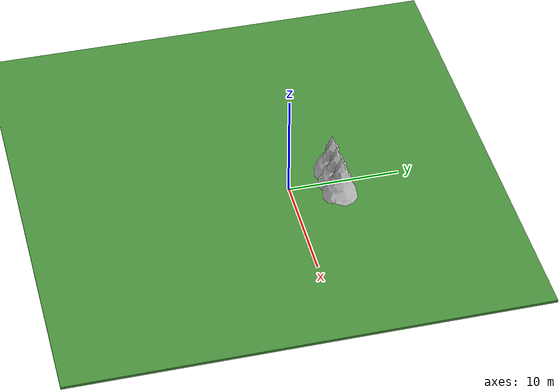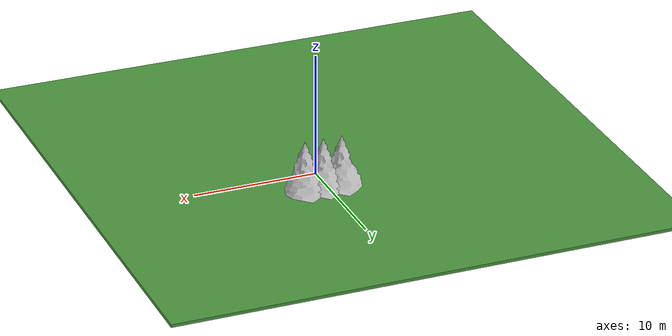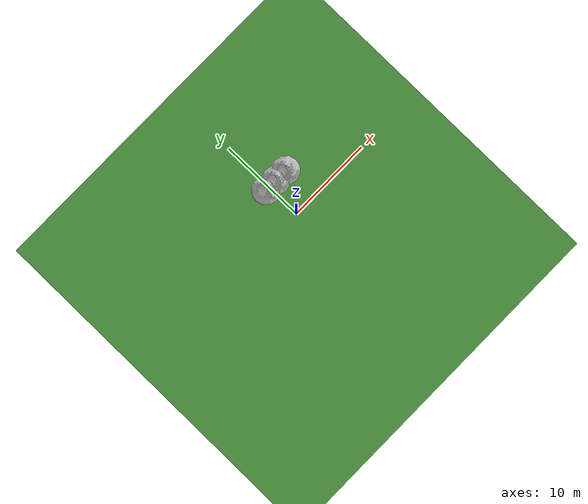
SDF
<sdf version="1.6">
 <world name="default">
  <light type="directional" name="sun">
   <pose>0.0 0.0 1000 -0.35 -0.5 0</pose>
   <diffuse>0.8 0.8 0.8 1</diffuse>
   <specular>0.2 0.2 0.2 1</specular>
   <attenuation>
    <range>1000</range>
    <constant>0.9</constant>
    <linear>0.01</linear>
    <quadratic>0.001</quadratic>
   </attenuation>
   <direction>-0.5 0.1 -0.9</direction>
  </light>
  <gravity>0 0 -9.8</gravity>
  <magnetic_field>6e-06 2.3e-05 -4.2e-05</magnetic_field>
  <atmosphere type="adiabatic"/>
  <physics name="default_physics" default="0" type="ode">
   <dart><collision_detector>bullet</collision_detector></dart>
   <max_step_size>0.005</max_step_size>
   <real_time_factor>1</real_time_factor>
   <real_time_update_rate>200</real_time_update_rate>
  </physics>
  <scene>
   <ambient>0.9 0.9 0.9 1</ambient>
   <sky><clouds><speed>8</speed></clouds></sky>
   <grid>false</grid>
   <background>0.7 0.7 0.7 1</background>
   <shadows>1</shadows>
  </scene>
  <spherical_coordinates>
   <surface_model>EARTH_WGS84</surface_model>
   <latitude_deg>0</latitude_deg>
   <longitude_deg>0</longitude_deg>
   <elevation>0</elevation>
   <heading_deg>0</heading_deg>
  </spherical_coordinates>
  <include>
   <uri>model://pine_tree</uri>
   <pose>-0.5 4 0 0 0 0</pose>
   <name>pine_tree_00</name>
   <static>true</static>
  </include>
  <include>
   <uri>model://pine_tree</uri>
   <pose>1.0 4 0 0 0 0</pose>
   <name>pine_tree_01</name>
   <static>true</static>
  </include>
  <include>
   <uri>model://pine_tree</uri>
   <pose>2.5 4 0 0 0 0</pose>
   <name>pine_tree_02</name>
   <static>true</static>
  </include>
  <include>
   <uri>model://my_ground_plane</uri>
   <pose>0 0 0.03 0 0 0</pose>
   <name>ground_00</name>
   <static>true</static>
  </include>
  <include>
   <uri>model://my_ground_plane</uri>
   <pose>-5 0 0.03 0 0 0</pose>
   <name>ground_01</name>
   <static>true</static>
  </include>
  <include>
   <uri>model://my_ground_plane</uri>
   <pose>0 -5 0.03 0 0 0</pose>
   <name>ground_02</name>
   <static>true</static>
  </include>
  <include>
   <uri>model://my_ground_plane</uri>
   <pose>5 0 0.03 0 0 0</pose>
   <name>ground_03</name>
   <static>true</static>
  </include>
  <include>
   <uri>model://my_ground_plane</uri>
   <pose>0 5 0.03 0 0 0</pose>
   <name>ground_04</name>
   <static>true</static>
  </include>
  <include>
   <uri>model://my_ground_plane</uri>
   <pose>-5 -5 0.03 0 0 0</pose>
   <name>ground_05</name>
   <static>true</static>
  </include>
  <include>
   <uri>model://my_ground_plane</uri>
   <pose>5 -5 0.03 0 0 0</pose>
   <name>ground_06</name>
   <static>true</static>
  </include>
  <include>
   <uri>model://my_ground_plane</uri>
   <pose>-10 0 0.03 0 0 0</pose>
   <name>ground_07</name>
   <static>true</static>
  </include>
  <include>
   <uri>model://my_ground_plane</uri>
   <pose>5 5 0.03 0 0 0</pose>
   <name>ground_08</name>
   <static>true</static>
  </include>
  <include>
   <uri>model://my_ground_plane</uri>
   <pose>-10 5 0.03 0 0 0</pose>
   <name>ground_09</name>
   <static>true</static>
  </include>
  <include>
   <uri>model://my_ground_plane</uri>
   <pose>-5 5 0.03 0 0 0</pose>
   <name>ground_10</name>
   <static>true</static>
  </include>
  <include>
   <uri>model://my_ground_plane</uri>
   <pose>-10 -10 0.03 0 0 0</pose>
   <name>ground_11</name>
   <static>true</static>
  </include>
  <include>
   <uri>model://my_ground_plane</uri>
   <pose>-5 -10 0.03 0 0 0</pose>
   <name>ground_12</name>
   <static>true</static>
  </include>
  <include>
   <uri>model://my_ground_plane</uri>
   <pose>0 -10 0.03 0 0 0</pose>
   <name>ground_13</name>
   <static>true</static>
  </include>
  <include>
   <uri>model://my_ground_plane</uri>
   <pose>5 -10 0.03 0 0 0</pose>
   <name>ground_14</name>
   <static>true</static>
  </include>
  <include>
   <uri>model://my_ground_plane</uri>
   <pose>-10 -5 0.03 0 0 0</pose>
   <name>ground_15</name>
   <static>true</static>
  </include>
  <include><uri>model://my_grass_plane</uri><pose>0 0 -0.05 0 0 0</pose><static>true</static></include>
 </world>
</sdf>

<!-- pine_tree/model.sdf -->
<sdf version="1.6">
  <model name="pine_tree">
    <static>true</static>
    <link name="link">
      <collision name="collision">
        <geometry>
          <mesh>
            <uri>file://isr-testbed/pine_tree/meshes/pine_tree.dae</uri>
          </mesh>
        </geometry>
      </collision>
      <visual name="branch">
        <geometry>
          <mesh>
            <uri>file://isr-testbed/pine_tree/meshes/pine_tree.dae</uri>
            <submesh>
              <name>Branch</name>
            </submesh>
          </mesh>
        </geometry>
        <material>
          <script>
            <uri>file://isr-testbed/pine_tree/materials/scripts/</uri>
            <uri>file://isr-testbed/pine_tree/materials/textures/</uri>
            <name>PineTree/Branch</name>
          </script>
        </material>
      </visual>
      <visual name="bark">
        <geometry>
          <mesh>
            <uri>file://isr-testbed/pine_tree/meshes/pine_tree.dae</uri>
            <submesh>
              <name>Bark</name>
            </submesh>
          </mesh>
        </geometry>
        <material>
          <script>
            <uri>file://isr-testbed/pine_tree/materials/scripts/</uri>
            <uri>file://isr-testbed/pine_tree/materials/textures/</uri>
            <name>PineTree/Bark</name>
          </script>
        </material>
      </visual>
    </link>
  </model>
</sdf>

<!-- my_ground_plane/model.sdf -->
<sdf version="1.7">
<model name="my_ground_plane">
  <static>true</static>
    <link name="link">
      <collision name="collision">
        <geometry>
          <plane>
            <normal>0 0 1</normal>
            <size>20 20</size>
          </plane>
        </geometry>
        <surface>
          <friction>
            <ode>
              <mu>100</mu>
              <mu2>50</mu2>
            </ode>
          </friction>
        </surface>
      </collision>
      <visual name="visual">
        <cast_shadows>false</cast_shadows>
        <geometry>
          <plane>
            <normal>0 0 1</normal>
            <size>20 20</size>
          </plane>
        </geometry>
        <material>
          <script>
            <uri>model://my_ground_plane/materials/scripts</uri>
            <uri>model://my_ground_plane/materials/textures/</uri>
            <name>MyGroundPlane/Image</name>
          </script>
        </material>
      </visual>
    </link>
  </model>
</sdf>

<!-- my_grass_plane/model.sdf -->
<sdf version="1.5">
    <model name="grass_plane">
        <static>true</static>
        <link name="link">
            <collision name="collision">
                <geometry>
                    <plane>
                        <size>250 250</size>
                    </plane>
                </geometry>
            </collision>
            <visual name="grass">
                <pose>0 0 0 0 0 0</pose>
                <cast_shadows>false</cast_shadows>
                <geometry>
                    <plane>
                        <size>250 250</size>
                    </plane>
                </geometry>
                <material>
                    <script>
                        <uri>file://media/materials/scripts/gazebo.material</uri>
                        <name>Gazebo/Grass</name>
                    </script>
                </material>
            </visual>

        </link>
    </model>
</sdf>
